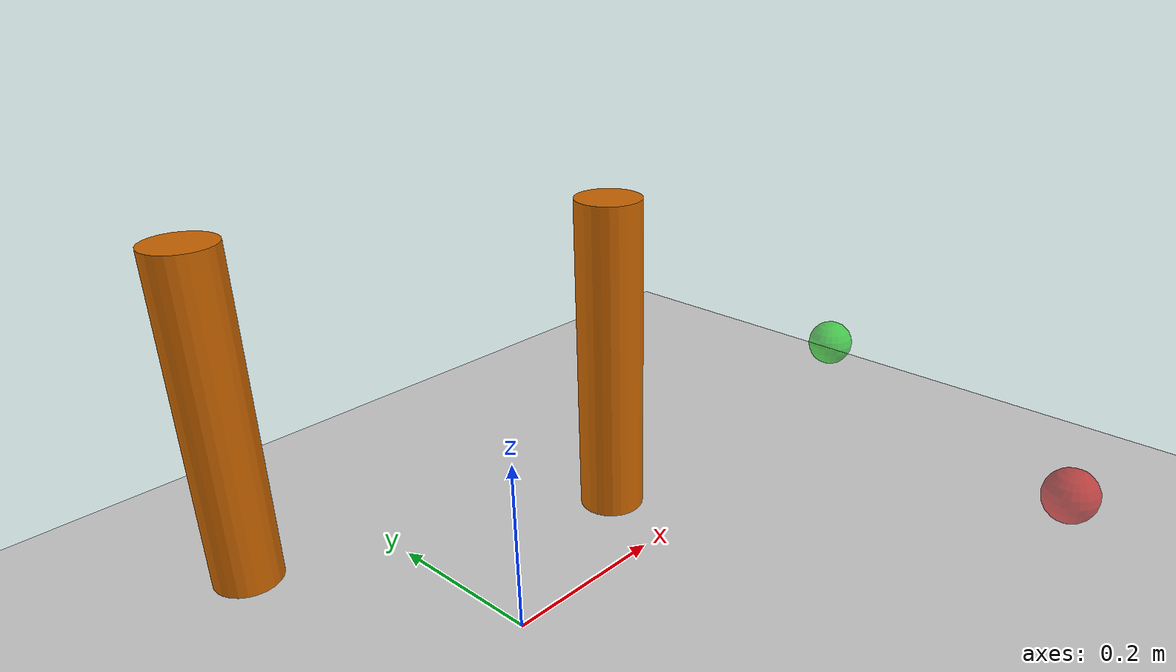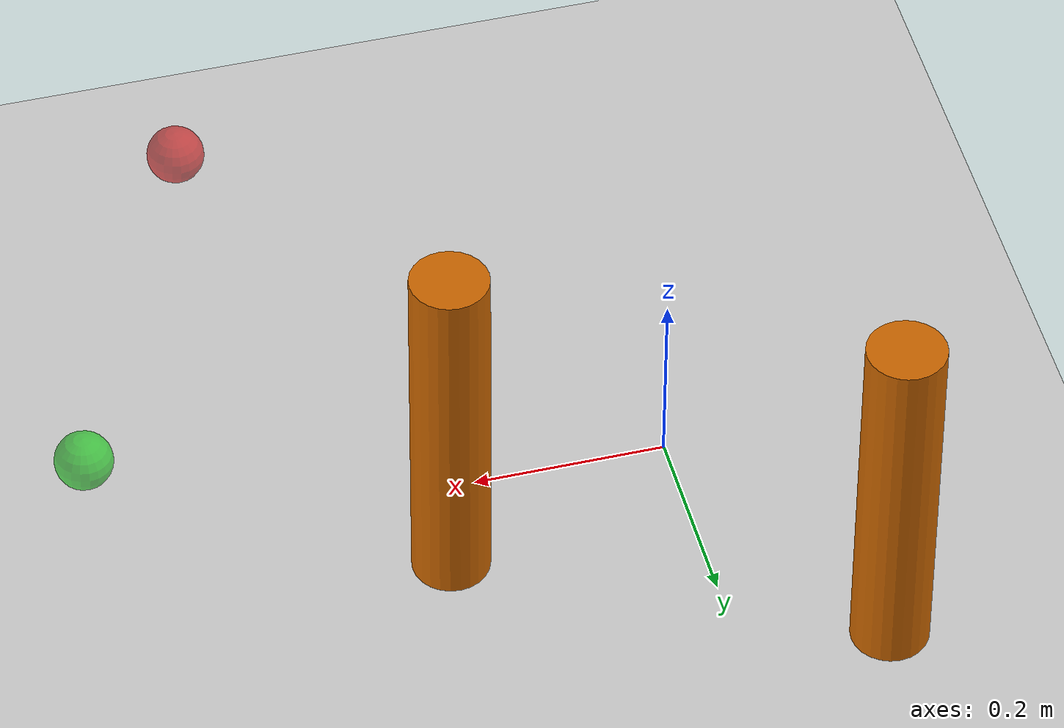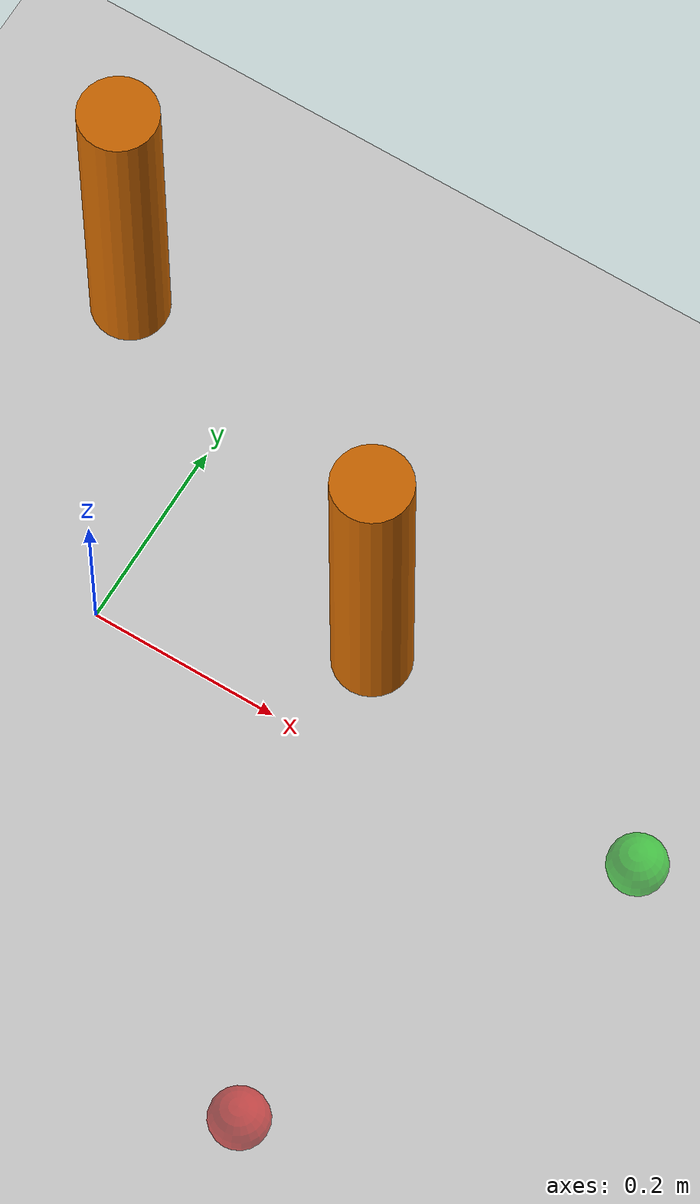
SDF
<?xml version="1.0" ?>
<sdf version="1.7">
  <world name="pillar_scenario">

    <gravity>0 0 -9.81</gravity>

    <physics name="default_physics" default="true" type="ode">
      <max_step_size>0.001</max_step_size>
      <real_time_factor>1</real_time_factor>
      <real_time_update_rate>1000</real_time_update_rate>
    </physics>

    <light name="sun" type="directional">
      <cast_shadows>true</cast_shadows>
      <pose>0 0 10 0 0 0</pose>
      <diffuse>0.8 0.8 0.8 1</diffuse>
      <specular>0.2 0.2 0.2 1</specular>
      <attenuation>
        <range>1000</range>
        <constant>0.9</constant>
        <linear>0.01</linear>
        <quadratic>0.001</quadratic>
      </attenuation>
      <direction>-0.5 0.1 -0.9</direction>
    </light>

    <model name="ground_plane">
      <static>true</static>
      <link name="link">
        <collision name="collision">
          <geometry>
            <plane>
              <normal>0 0 1</normal>
              <size>100 100</size>
            </plane>
          </geometry>
        </collision>
        <visual name="visual">
          <geometry>
            <plane>
              <normal>0 0 1</normal>
              <size>100 100</size>
            </plane>
          </geometry>
          <material>
            <ambient>0.8 0.8 0.8 1</ambient>
            <diffuse>0.8 0.8 0.8 1</diffuse>
            <specular>0.8 0.8 0.8 1</specular>
          </material>
        </visual>
      </link>
    </model>

    <!-- Pillar A: r=0.04 m, h=0.40 m, centred at (0.25, 0.10, 0.20) -->
    <model name="pillar_a">
      <static>true</static>
      <pose>0.25 0.10 0.20 0 0 0</pose>
      <link name="link">
        <collision name="collision">
          <geometry>
            <cylinder>
              <radius>0.04</radius>
              <length>0.40</length>
            </cylinder>
          </geometry>
        </collision>
        <visual name="visual">
          <geometry>
            <cylinder>
              <radius>0.04</radius>
              <length>0.40</length>
            </cylinder>
          </geometry>
          <material>
            <ambient>0.8 0.4 0.0 1</ambient>
            <diffuse>0.8 0.4 0.0 1</diffuse>
          </material>
        </visual>
      </link>
    </model>

    <!-- Pillar B: r=0.04 m, h=0.40 m, centred at (-0.15, 0.30, 0.20) -->
    <model name="pillar_b">
      <static>true</static>
      <pose>-0.15 0.30 0.20 0 0 0</pose>
      <link name="link">
        <collision name="collision">
          <geometry>
            <cylinder>
              <radius>0.04</radius>
              <length>0.40</length>
            </cylinder>
          </geometry>
        </collision>
        <visual name="visual">
          <geometry>
            <cylinder>
              <radius>0.04</radius>
              <length>0.40</length>
            </cylinder>
          </geometry>
          <material>
            <ambient>0.8 0.4 0.0 1</ambient>
            <diffuse>0.8 0.4 0.0 1</diffuse>
          </material>
        </visual>
      </link>
    </model>

    <!-- Start region: green visual-only sphere at arm rest pose EE -->
    <model name="region_start">
      <static>true</static>
      <pose>0.60 0.0 0.138 0 0 0</pose>
      <link name="link">
        <visual name="visual">
          <geometry>
            <sphere>
              <radius>0.03</radius>
            </sphere>
          </geometry>
          <material>
            <ambient>0.0 0.8 0.0 0.6</ambient>
            <diffuse>0.0 0.8 0.0 0.6</diffuse>
          </material>
          <transparency>0.4</transparency>
        </visual>
      </link>
    </model>

    <!-- Target region: red visual-only sphere at goal EE position -->
    <model name="region_target">
      <static>true</static>
      <pose>0.417 -0.405 0.138 0 0 0</pose>
      <link name="link">
        <visual name="visual">
          <geometry>
            <sphere>
              <radius>0.03</radius>
            </sphere>
          </geometry>
          <material>
            <ambient>0.8 0.0 0.0 0.6</ambient>
            <diffuse>0.8 0.0 0.0 0.6</diffuse>
          </material>
          <transparency>0.4</transparency>
        </visual>
      </link>
    </model>

  </world>
</sdf>
